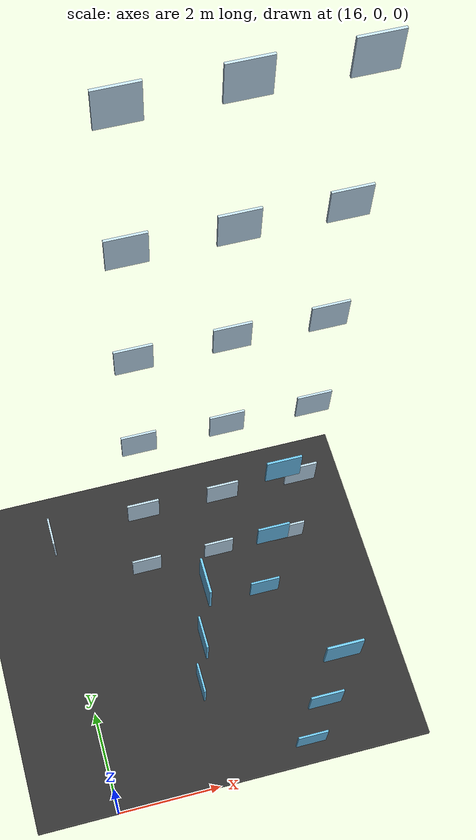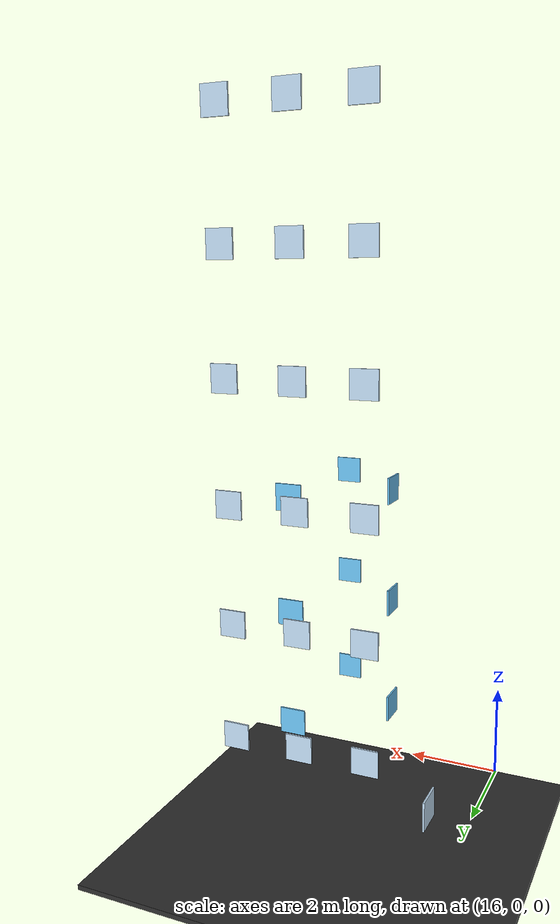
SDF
<sdf version="1.10">
 <world name="city_uav_demo">
  <model name="ground_plane">
   <static>true</static>
   <pose>20.0000 20.0000 -0.0500 0 0 0.0000</pose>
   <link name="link">
    <collision name="collision"><geometry><box><size>40.0000 40.0000 0.1000</size></box></geometry></collision>
    <visual name="visual">
     <geometry><box><size>40.0000 40.0000 0.1000</size></box></geometry>
     <material><ambient>0.18 0.18 0.18 1.0</ambient><diffuse>0.18 0.18 0.18 1.0</diffuse></material>
    </visual>
   </link>
  </model>
  <model name="building_3_window_front_0">
   <static>true</static>
   <pose>17.6000 3.9880 2.0000 0 0 0.0000</pose>
   <link name="link">
    <visual name="visual">
     <geometry><box><size>0.5500 0.0350 0.5500</size></box></geometry>
     <material><ambient>0.75 0.86 0.95 1.0</ambient><diffuse>0.75 0.86 0.95 1.0</diffuse></material>
    </visual>
   </link>
  </model>
  <model name="building_3_window_front_1">
   <static>true</static>
   <pose>19.0000 3.9880 2.0000 0 0 0.0000</pose>
   <link name="link">
    <visual name="visual">
     <geometry><box><size>0.5500 0.0350 0.5500</size></box></geometry>
     <material><ambient>0.75 0.86 0.95 1.0</ambient><diffuse>0.75 0.86 0.95 1.0</diffuse></material>
    </visual>
   </link>
  </model>
  <model name="building_3_window_front_2">
   <static>true</static>
   <pose>20.4000 3.9880 2.0000 0 0 0.0000</pose>
   <link name="link">
    <visual name="visual">
     <geometry><box><size>0.5500 0.0350 0.5500</size></box></geometry>
     <material><ambient>0.75 0.86 0.95 1.0</ambient><diffuse>0.75 0.86 0.95 1.0</diffuse></material>
    </visual>
   </link>
  </model>
  <model name="building_3_window_front_3">
   <static>true</static>
   <pose>17.6000 3.9880 4.4000 0 0 0.0000</pose>
   <link name="link">
    <visual name="visual">
     <geometry><box><size>0.5500 0.0350 0.5500</size></box></geometry>
     <material><ambient>0.75 0.86 0.95 1.0</ambient><diffuse>0.75 0.86 0.95 1.0</diffuse></material>
    </visual>
   </link>
  </model>
  <model name="building_3_window_front_4">
   <static>true</static>
   <pose>19.0000 3.9880 4.4000 0 0 0.0000</pose>
   <link name="link">
    <visual name="visual">
     <geometry><box><size>0.5500 0.0350 0.5500</size></box></geometry>
     <material><ambient>0.75 0.86 0.95 1.0</ambient><diffuse>0.75 0.86 0.95 1.0</diffuse></material>
    </visual>
   </link>
  </model>
  <model name="building_3_window_front_5">
   <static>true</static>
   <pose>20.4000 3.9880 4.4000 0 0 0.0000</pose>
   <link name="link">
    <visual name="visual">
     <geometry><box><size>0.5500 0.0350 0.5500</size></box></geometry>
     <material><ambient>0.75 0.86 0.95 1.0</ambient><diffuse>0.75 0.86 0.95 1.0</diffuse></material>
    </visual>
   </link>
  </model>
  <model name="building_3_window_front_6">
   <static>true</static>
   <pose>17.6000 3.9880 6.8000 0 0 0.0000</pose>
   <link name="link">
    <visual name="visual">
     <geometry><box><size>0.5500 0.0350 0.5500</size></box></geometry>
     <material><ambient>0.75 0.86 0.95 1.0</ambient><diffuse>0.75 0.86 0.95 1.0</diffuse></material>
    </visual>
   </link>
  </model>
  <model name="building_3_window_front_7">
   <static>true</static>
   <pose>19.0000 3.9880 6.8000 0 0 0.0000</pose>
   <link name="link">
    <visual name="visual">
     <geometry><box><size>0.5500 0.0350 0.5500</size></box></geometry>
     <material><ambient>0.75 0.86 0.95 1.0</ambient><diffuse>0.75 0.86 0.95 1.0</diffuse></material>
    </visual>
   </link>
  </model>
  <model name="building_3_window_front_8">
   <static>true</static>
   <pose>20.4000 3.9880 6.8000 0 0 0.0000</pose>
   <link name="link">
    <visual name="visual">
     <geometry><box><size>0.5500 0.0350 0.5500</size></box></geometry>
     <material><ambient>0.75 0.86 0.95 1.0</ambient><diffuse>0.75 0.86 0.95 1.0</diffuse></material>
    </visual>
   </link>
  </model>
  <model name="building_3_window_front_9">
   <static>true</static>
   <pose>17.6000 3.9880 9.2000 0 0 0.0000</pose>
   <link name="link">
    <visual name="visual">
     <geometry><box><size>0.5500 0.0350 0.5500</size></box></geometry>
     <material><ambient>0.75 0.86 0.95 1.0</ambient><diffuse>0.75 0.86 0.95 1.0</diffuse></material>
    </visual>
   </link>
  </model>
  <model name="building_3_window_front_10">
   <static>true</static>
   <pose>19.0000 3.9880 9.2000 0 0 0.0000</pose>
   <link name="link">
    <visual name="visual">
     <geometry><box><size>0.5500 0.0350 0.5500</size></box></geometry>
     <material><ambient>0.75 0.86 0.95 1.0</ambient><diffuse>0.75 0.86 0.95 1.0</diffuse></material>
    </visual>
   </link>
  </model>
  <model name="building_3_window_front_11">
   <static>true</static>
   <pose>20.4000 3.9880 9.2000 0 0 0.0000</pose>
   <link name="link">
    <visual name="visual">
     <geometry><box><size>0.5500 0.0350 0.5500</size></box></geometry>
     <material><ambient>0.75 0.86 0.95 1.0</ambient><diffuse>0.75 0.86 0.95 1.0</diffuse></material>
    </visual>
   </link>
  </model>
  <model name="building_3_window_front_12">
   <static>true</static>
   <pose>17.6000 3.9880 11.6000 0 0 0.0000</pose>
   <link name="link">
    <visual name="visual">
     <geometry><box><size>0.5500 0.0350 0.5500</size></box></geometry>
     <material><ambient>0.75 0.86 0.95 1.0</ambient><diffuse>0.75 0.86 0.95 1.0</diffuse></material>
    </visual>
   </link>
  </model>
  <model name="building_3_window_front_13">
   <static>true</static>
   <pose>19.0000 3.9880 11.6000 0 0 0.0000</pose>
   <link name="link">
    <visual name="visual">
     <geometry><box><size>0.5500 0.0350 0.5500</size></box></geometry>
     <material><ambient>0.75 0.86 0.95 1.0</ambient><diffuse>0.75 0.86 0.95 1.0</diffuse></material>
    </visual>
   </link>
  </model>
  <model name="building_3_window_front_14">
   <static>true</static>
   <pose>20.4000 3.9880 11.6000 0 0 0.0000</pose>
   <link name="link">
    <visual name="visual">
     <geometry><box><size>0.5500 0.0350 0.5500</size></box></geometry>
     <material><ambient>0.75 0.86 0.95 1.0</ambient><diffuse>0.75 0.86 0.95 1.0</diffuse></material>
    </visual>
   </link>
  </model>
  <model name="building_3_window_front_15">
   <static>true</static>
   <pose>17.6000 3.9880 14.0000 0 0 0.0000</pose>
   <link name="link">
    <visual name="visual">
     <geometry><box><size>0.5500 0.0350 0.5500</size></box></geometry>
     <material><ambient>0.75 0.86 0.95 1.0</ambient><diffuse>0.75 0.86 0.95 1.0</diffuse></material>
    </visual>
   </link>
  </model>
  <model name="building_3_window_front_16">
   <static>true</static>
   <pose>19.0000 3.9880 14.0000 0 0 0.0000</pose>
   <link name="link">
    <visual name="visual">
     <geometry><box><size>0.5500 0.0350 0.5500</size></box></geometry>
     <material><ambient>0.75 0.86 0.95 1.0</ambient><diffuse>0.75 0.86 0.95 1.0</diffuse></material>
    </visual>
   </link>
  </model>
  <model name="building_3_window_front_17">
   <static>true</static>
   <pose>20.4000 3.9880 14.0000 0 0 0.0000</pose>
   <link name="link">
    <visual name="visual">
     <geometry><box><size>0.5500 0.0350 0.5500</size></box></geometry>
     <material><ambient>0.75 0.86 0.95 1.0</ambient><diffuse>0.75 0.86 0.95 1.0</diffuse></material>
    </visual>
   </link>
  </model>
  <model name="building_3_window_left_0">
   <static>true</static>
   <pose>15.9880 5.0000 2.0000 0 0 0.0000</pose>
   <link name="link">
    <visual name="visual">
     <geometry><box><size>0.0350 0.5500 0.5500</size></box></geometry>
     <material><ambient>0.75 0.86 0.95 1.0</ambient><diffuse>0.75 0.86 0.95 1.0</diffuse></material>
    </visual>
   </link>
  </model>
  <model name="building_9_window_front_0">
   <static>true</static>
   <pose>19.6250 -0.0120 2.0000 0 0 0.0000</pose>
   <link name="link">
    <visual name="visual">
     <geometry><box><size>0.5500 0.0350 0.5500</size></box></geometry>
     <material><ambient>0.42 0.76 0.95 1.0</ambient><diffuse>0.42 0.76 0.95 1.0</diffuse></material>
    </visual>
   </link>
  </model>
  <model name="building_9_window_front_2">
   <static>true</static>
   <pose>19.6250 -0.0120 4.4000 0 0 0.0000</pose>
   <link name="link">
    <visual name="visual">
     <geometry><box><size>0.5500 0.0350 0.5500</size></box></geometry>
     <material><ambient>0.42 0.76 0.95 1.0</ambient><diffuse>0.42 0.76 0.95 1.0</diffuse></material>
    </visual>
   </link>
  </model>
  <model name="building_9_window_front_4">
   <static>true</static>
   <pose>19.6250 -0.0120 6.8000 0 0 0.0000</pose>
   <link name="link">
    <visual name="visual">
     <geometry><box><size>0.5500 0.0350 0.5500</size></box></geometry>
     <material><ambient>0.42 0.76 0.95 1.0</ambient><diffuse>0.42 0.76 0.95 1.0</diffuse></material>
    </visual>
   </link>
  </model>
  <model name="building_9_window_back_0">
   <static>true</static>
   <pose>19.6250 3.0120 2.0000 0 0 0.0000</pose>
   <link name="link">
    <visual name="visual">
     <geometry><box><size>0.5500 0.0350 0.5500</size></box></geometry>
     <material><ambient>0.42 0.76 0.95 1.0</ambient><diffuse>0.42 0.76 0.95 1.0</diffuse></material>
    </visual>
   </link>
  </model>
  <model name="building_9_window_back_2">
   <static>true</static>
   <pose>19.6250 3.0120 4.4000 0 0 0.0000</pose>
   <link name="link">
    <visual name="visual">
     <geometry><box><size>0.5500 0.0350 0.5500</size></box></geometry>
     <material><ambient>0.42 0.76 0.95 1.0</ambient><diffuse>0.42 0.76 0.95 1.0</diffuse></material>
    </visual>
   </link>
  </model>
  <model name="building_9_window_back_4">
   <static>true</static>
   <pose>19.6250 3.0120 6.8000 0 0 0.0000</pose>
   <link name="link">
    <visual name="visual">
     <geometry><box><size>0.5500 0.0350 0.5500</size></box></geometry>
     <material><ambient>0.42 0.76 0.95 1.0</ambient><diffuse>0.42 0.76 0.95 1.0</diffuse></material>
    </visual>
   </link>
  </model>
  <model name="building_9_window_left_0">
   <static>true</static>
   <pose>17.9880 1.5000 2.0000 0 0 0.0000</pose>
   <link name="link">
    <visual name="visual">
     <geometry><box><size>0.0350 0.5500 0.5500</size></box></geometry>
     <material><ambient>0.42 0.76 0.95 1.0</ambient><diffuse>0.42 0.76 0.95 1.0</diffuse></material>
    </visual>
   </link>
  </model>
  <model name="building_9_window_left_1">
   <static>true</static>
   <pose>17.9880 1.5000 4.4000 0 0 0.0000</pose>
   <link name="link">
    <visual name="visual">
     <geometry><box><size>0.0350 0.5500 0.5500</size></box></geometry>
     <material><ambient>0.42 0.76 0.95 1.0</ambient><diffuse>0.42 0.76 0.95 1.0</diffuse></material>
    </visual>
   </link>
  </model>
  <model name="building_9_window_left_2">
   <static>true</static>
   <pose>17.9880 1.5000 6.8000 0 0 0.0000</pose>
   <link name="link">
    <visual name="visual">
     <geometry><box><size>0.0350 0.5500 0.5500</size></box></geometry>
     <material><ambient>0.42 0.76 0.95 1.0</ambient><diffuse>0.42 0.76 0.95 1.0</diffuse></material>
    </visual>
   </link>
  </model>
 </world>
</sdf>
